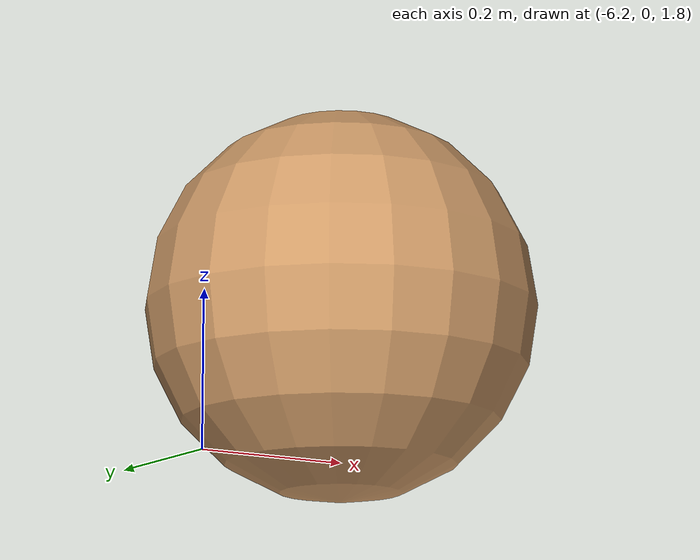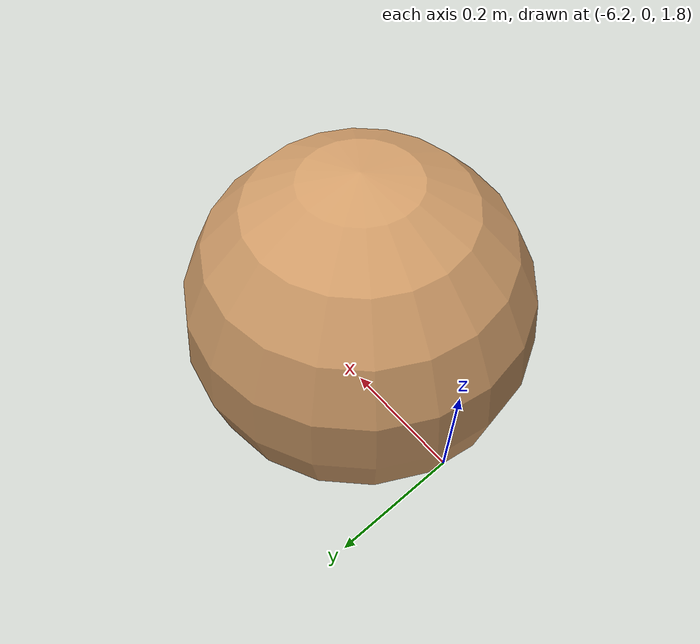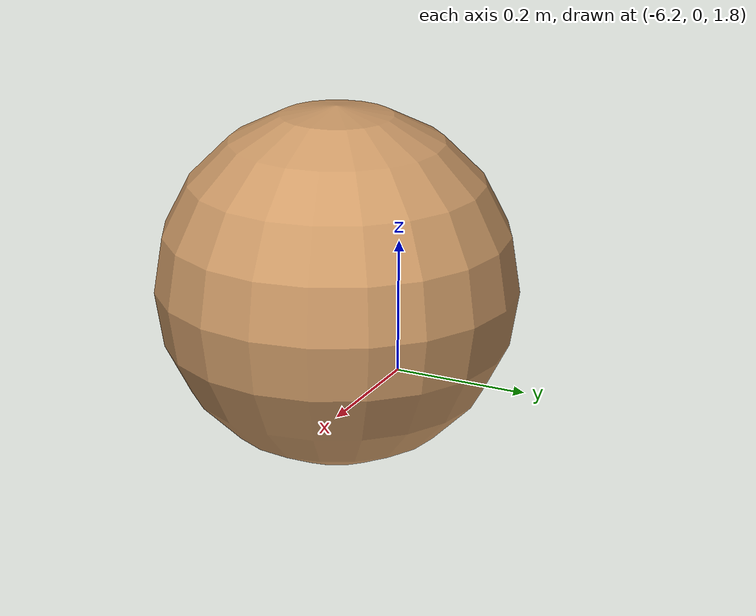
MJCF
<mujoco>
  <compiler inertiafromgeom="true" angle="degree" coordinate="local" />
  <option timestep="0.02" integrator="RK4" />
  <default>
    <joint limited="false" armature="0" damping="0" />
    <geom condim="3" conaffinity="0" margin="0" friction="1 0.5 0.5" rgba="0.8 0.6 0.4 1" density="100" />
  </default>
  <asset>
    <texture type="skybox" builtin="gradient" width="100" height="100" rgb1="1 1 1" rgb2="0 0 0" />
    <texture name="texgeom" type="cube" builtin="flat" mark="cross" width="127" height="1278" rgb1="0.8 0.6 0.4" rgb2="0.8 0.6 0.4" markrgb="1 1 1" random="0.01" />
    <texture name="texplane" type="2d" builtin="checker" rgb1="0 0 0" rgb2="0.8 0.8 0.8" width="100" height="100" />
    <material name='MatPlane' texture="texplane" shininess="1" texrepeat="30 30" specular="1"  reflectance="0.5" />
    <material name='geom' texture="texgeom" texuniform="true" />
  </asset>
  <worldbody>
    <light directional="true" cutoff="100" exponent="1" diffuse="1 1 1" specular=".1 .1 .1" pos="0 0 1.3" dir="-0 0 -1.3" />
    <geom name='floor' pos='0 0 0' size='40 40 40' type='plane' conaffinity='1' rgba='0.8 0.9 0.8 1' condim='3' />
    <body name="torso" pos="-6.0 0 2.0">
            <geom name="torso_geom" type="sphere" size="0.25 0.05 0.05" pos="0 0 0" />
            <joint name="root" type="free" limited="false" pos="0 0 0" axis="0 0 1" margin="0.01" armature="0" damping="0" />
            <body name="front_left_leg" pos="0 0 0">
                <geom name="ball_geom" conaffinity="1" density="1000" type="sphere" size="0.001" pos="0 0 0.0"/>
                <joint axis="1 0 0" name="x-rotor" pos="0 0 0.2" type="slide"/>
                <joint axis="0 1 0" name="y-rotor" pos="0 0 0.2" type="slide"/>
                <joint axis="0 0 1" limited="false" name="rot" pos="0 0 0" type="hinge"/>
            </body>
    </body>
  </worldbody>
  <actuator>
        <motor ctrllimited="true" ctrlrange="-1 1" gear="100.0" joint="x-rotor"/>
        <motor ctrllimited="true" ctrlrange="-1 1" gear="100.0" joint="y-rotor"/>
  </actuator>
</mujoco>
